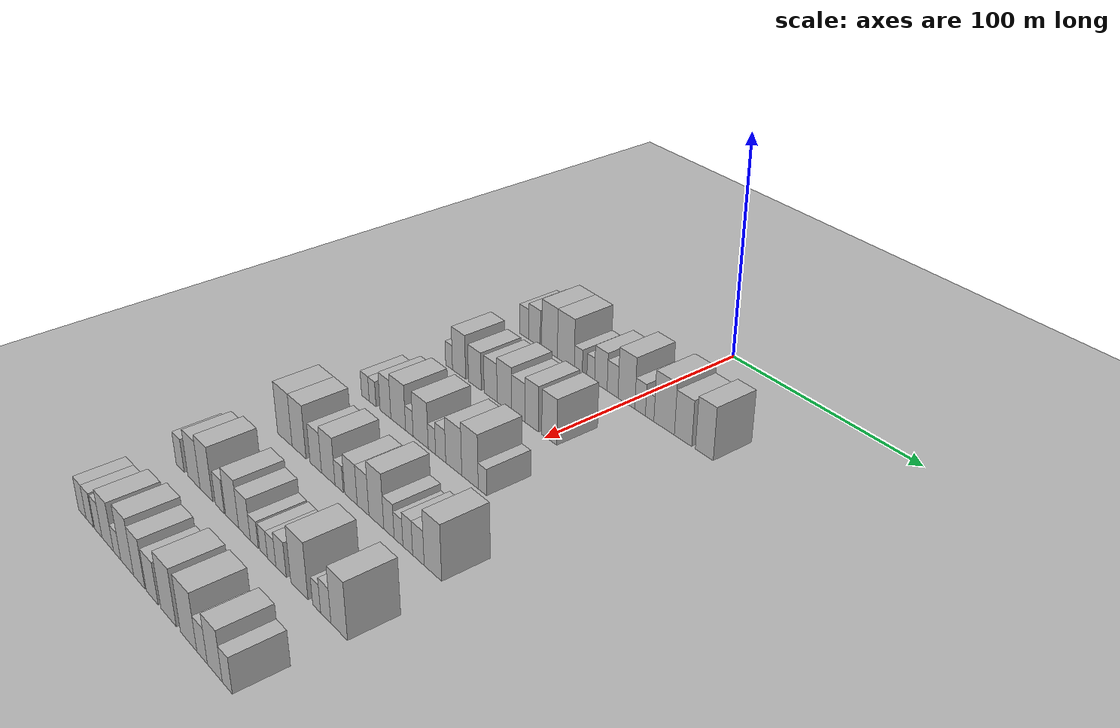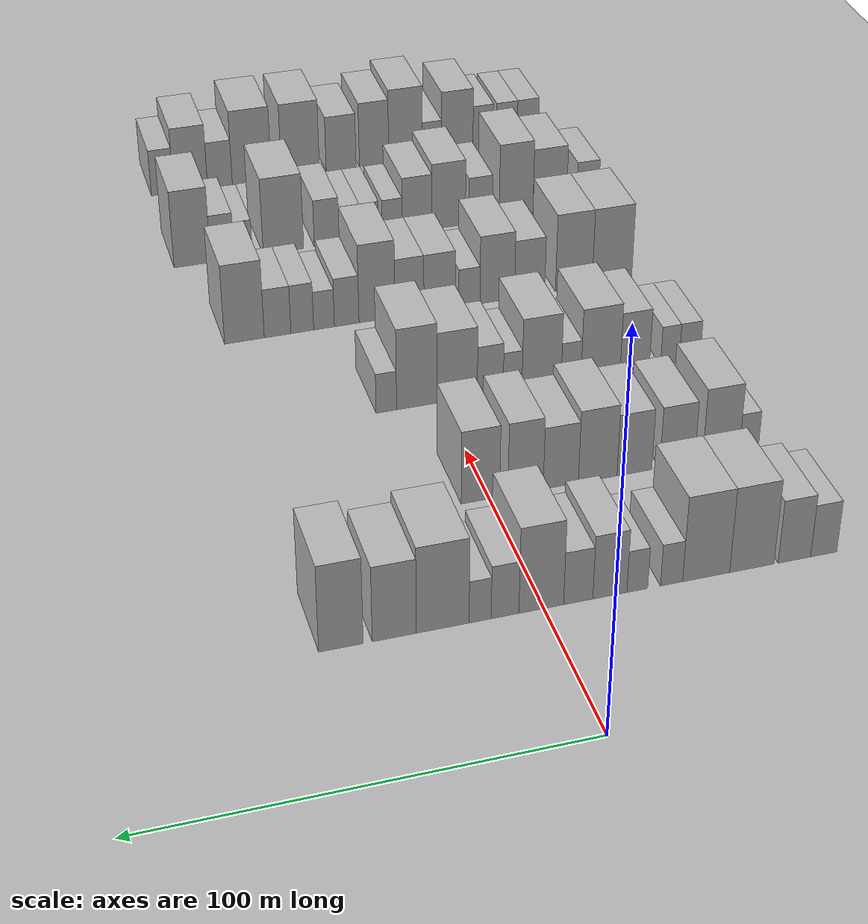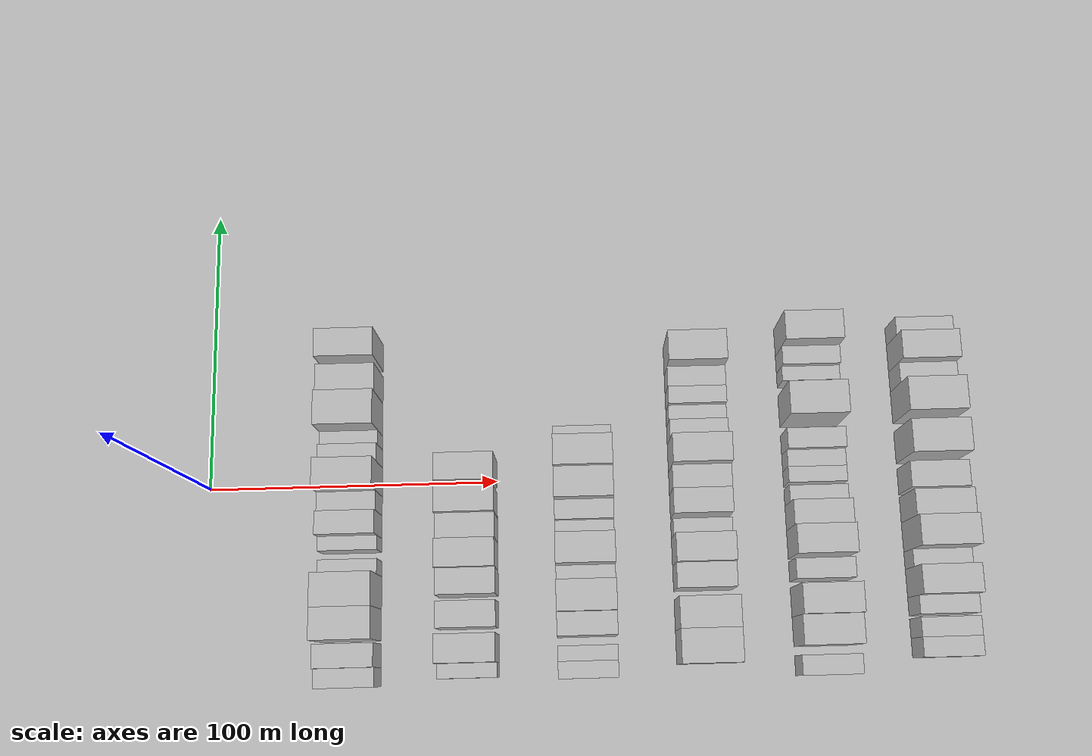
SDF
<sdf version="1.6">
 <world name="default">
  <include><name>ground_plane_1</name><uri>model://HANNAS_ground_plane</uri></include>
  <include>
   <name>ground_plane_2</name>
   <uri>model://HANNAS_ground_plane</uri>
   <pose>100 0 0  0 0 0</pose>
  </include>
  <model name="building_64">
   <static>1</static>
   <pose>50.0000 -65.6511 0 0.000000 0.000000 0.000000</pose>
   <link name="link">
    <pose>0 0 7.50 0 0 0</pose>
    <collision name="collision"><geometry><box><size>20.0000 6.3529 15.0000</size></box></geometry></collision>
    <visual name="visual">
     <cast_shadows>0</cast_shadows>
     <geometry><box><size>20.0000 6.3529 15.0000</size></box></geometry>
     <material>
      <script>
       <uri>model://HANNAS_wall/materials/scripts</uri>
       <uri>model://HANNAS_wall/materials/textures</uri>
       <name>vrc/HANNAS_wall</name>
      </script>
     </material>
    </visual>
   </link>
  </model>
  <model name="building_65">
   <static>1</static>
   <pose>50.0000 -58.5426 0 0.000000 0.000000 0.000000</pose>
   <link name="link">
    <pose>0 0 9.00 0 0 0</pose>
    <collision name="collision"><geometry><box><size>20.0000 7.8641 18.0000</size></box></geometry></collision>
    <visual name="visual">
     <cast_shadows>0</cast_shadows>
     <geometry><box><size>20.0000 7.8641 18.0000</size></box></geometry>
     <material>
      <script>
       <uri>model://HANNAS_wall/materials/scripts</uri>
       <uri>model://HANNAS_wall/materials/textures</uri>
       <name>vrc/HANNAS_wall</name>
      </script>
     </material>
    </visual>
   </link>
  </model>
  <model name="building_66">
   <static>1</static>
   <pose>50.0000 -48.3040 0 0.000000 0.000000 0.000000</pose>
   <link name="link">
    <pose>0 0 12.00 0 0 0</pose>
    <collision name="collision"><geometry><box><size>20.0000 10.6131 24.0000</size></box></geometry></collision>
    <visual name="visual">
     <cast_shadows>0</cast_shadows>
     <geometry><box><size>20.0000 10.6131 24.0000</size></box></geometry>
     <material>
      <script>
       <uri>model://HANNAS_wall/materials/scripts</uri>
       <uri>model://HANNAS_wall/materials/textures</uri>
       <name>vrc/HANNAS_wall</name>
      </script>
     </material>
    </visual>
   </link>
  </model>
  <model name="building_67">
   <static>1</static>
   <pose>50.0000 -37.4213 0 0.000000 0.000000 0.000000</pose>
   <link name="link">
    <pose>0 0 12.00 0 0 0</pose>
    <collision name="collision"><geometry><box><size>20.0000 11.1522 24.0000</size></box></geometry></collision>
    <visual name="visual">
     <cast_shadows>0</cast_shadows>
     <geometry><box><size>20.0000 11.1522 24.0000</size></box></geometry>
     <material>
      <script>
       <uri>model://HANNAS_wall/materials/scripts</uri>
       <uri>model://HANNAS_wall/materials/textures</uri>
       <name>vrc/HANNAS_wall</name>
      </script>
     </material>
    </visual>
   </link>
  </model>
  <model name="building_68">
   <static>1</static>
   <pose>50.0000 -29.2512 0 0.000000 0.000000 0.000000</pose>
   <link name="link">
    <pose>0 0 6.00 0 0 0</pose>
    <collision name="collision"><geometry><box><size>20.0000 5.1881 12.0000</size></box></geometry></collision>
    <visual name="visual">
     <cast_shadows>0</cast_shadows>
     <geometry><box><size>20.0000 5.1881 12.0000</size></box></geometry>
     <material>
      <script>
       <uri>model://HANNAS_wall/materials/scripts</uri>
       <uri>model://HANNAS_wall/materials/textures</uri>
       <name>vrc/HANNAS_wall</name>
      </script>
     </material>
    </visual>
   </link>
  </model>
  <model name="building_69">
   <static>1</static>
   <pose>50.0000 -21.2386 0 0.000000 0.000000 0.000000</pose>
   <link name="link">
    <pose>0 0 6.00 0 0 0</pose>
    <collision name="collision"><geometry><box><size>20.0000 4.8372 12.0000</size></box></geometry></collision>
    <visual name="visual">
     <cast_shadows>0</cast_shadows>
     <geometry><box><size>20.0000 4.8372 12.0000</size></box></geometry>
     <material>
      <script>
       <uri>model://HANNAS_wall/materials/scripts</uri>
       <uri>model://HANNAS_wall/materials/textures</uri>
       <name>vrc/HANNAS_wall</name>
      </script>
     </material>
    </visual>
   </link>
  </model>
  <model name="building_70">
   <static>1</static>
   <pose>50.0000 -14.8631 0 0.000000 0.000000 0.000000</pose>
   <link name="link">
    <pose>0 0 9.00 0 0 0</pose>
    <collision name="collision"><geometry><box><size>20.0000 7.9138 18.0000</size></box></geometry></collision>
    <visual name="visual">
     <cast_shadows>0</cast_shadows>
     <geometry><box><size>20.0000 7.9138 18.0000</size></box></geometry>
     <material>
      <script>
       <uri>model://HANNAS_wall/materials/scripts</uri>
       <uri>model://HANNAS_wall/materials/textures</uri>
       <name>vrc/HANNAS_wall</name>
      </script>
     </material>
    </visual>
   </link>
  </model>
  <model name="building_71">
   <static>1</static>
   <pose>50.0000 -7.5444 0 0.000000 0.000000 0.000000</pose>
   <link name="link">
    <pose>0 0 7.50 0 0 0</pose>
    <collision name="collision"><geometry><box><size>20.0000 6.7236 15.0000</size></box></geometry></collision>
    <visual name="visual">
     <cast_shadows>0</cast_shadows>
     <geometry><box><size>20.0000 6.7236 15.0000</size></box></geometry>
     <material>
      <script>
       <uri>model://HANNAS_wall/materials/scripts</uri>
       <uri>model://HANNAS_wall/materials/textures</uri>
       <name>vrc/HANNAS_wall</name>
      </script>
     </material>
    </visual>
   </link>
  </model>
  <model name="building_72">
   <static>1</static>
   <pose>50.0000 0.9206 0 0.000000 0.000000 0.000000</pose>
   <link name="link">
    <pose>0 0 12.00 0 0 0</pose>
    <collision name="collision"><geometry><box><size>20.0000 10.2063 24.0000</size></box></geometry></collision>
    <visual name="visual">
     <cast_shadows>0</cast_shadows>
     <geometry><box><size>20.0000 10.2063 24.0000</size></box></geometry>
     <material>
      <script>
       <uri>model://HANNAS_wall/materials/scripts</uri>
       <uri>model://HANNAS_wall/materials/textures</uri>
       <name>vrc/HANNAS_wall</name>
      </script>
     </material>
    </visual>
   </link>
  </model>
  <model name="building_73">
   <static>1</static>
   <pose>50.0000 9.1460 0 0.000000 0.000000 0.000000</pose>
   <link name="link">
    <pose>0 0 7.50 0 0 0</pose>
    <collision name="collision"><geometry><box><size>20.0000 6.2447 15.0000</size></box></geometry></collision>
    <visual name="visual">
     <cast_shadows>0</cast_shadows>
     <geometry><box><size>20.0000 6.2447 15.0000</size></box></geometry>
     <material>
      <script>
       <uri>model://HANNAS_wall/materials/scripts</uri>
       <uri>model://HANNAS_wall/materials/textures</uri>
       <name>vrc/HANNAS_wall</name>
      </script>
     </material>
    </visual>
   </link>
  </model>
  <model name="building_74">
   <static>1</static>
   <pose>50.0000 14.7598 0 0.000000 0.000000 0.000000</pose>
   <link name="link">
    <pose>0 0 6.00 0 0 0</pose>
    <collision name="collision"><geometry><box><size>20.0000 4.9830 12.0000</size></box></geometry></collision>
    <visual name="visual">
     <cast_shadows>0</cast_shadows>
     <geometry><box><size>20.0000 4.9830 12.0000</size></box></geometry>
     <material>
      <script>
       <uri>model://HANNAS_wall/materials/scripts</uri>
       <uri>model://HANNAS_wall/materials/textures</uri>
       <name>vrc/HANNAS_wall</name>
      </script>
     </material>
    </visual>
   </link>
  </model>
  <model name="building_75">
   <static>1</static>
   <pose>50.0000 23.1428 0 0.000000 0.000000 0.000000</pose>
   <link name="link">
    <pose>0 0 12.00 0 0 0</pose>
    <collision name="collision"><geometry><box><size>20.0000 11.7831 24.0000</size></box></geometry></collision>
    <visual name="visual">
     <cast_shadows>0</cast_shadows>
     <geometry><box><size>20.0000 11.7831 24.0000</size></box></geometry>
     <material>
      <script>
       <uri>model://HANNAS_wall/materials/scripts</uri>
       <uri>model://HANNAS_wall/materials/textures</uri>
       <name>vrc/HANNAS_wall</name>
      </script>
     </material>
    </visual>
   </link>
  </model>
  <model name="building_76">
   <static>1</static>
   <pose>50.0000 33.9012 0 0.000000 0.000000 0.000000</pose>
   <link name="link">
    <pose>0 0 10.50 0 0 0</pose>
    <collision name="collision"><geometry><box><size>20.0000 9.7337 21.0000</size></box></geometry></collision>
    <visual name="visual">
     <cast_shadows>0</cast_shadows>
     <geometry><box><size>20.0000 9.7337 21.0000</size></box></geometry>
     <material>
      <script>
       <uri>model://HANNAS_wall/materials/scripts</uri>
       <uri>model://HANNAS_wall/materials/textures</uri>
       <name>vrc/HANNAS_wall</name>
      </script>
     </material>
    </visual>
   </link>
  </model>
  <model name="building_77">
   <static>1</static>
   <pose>50.0000 45.6295 0 0.000000 0.000000 0.000000</pose>
   <link name="link">
    <pose>0 0 12.00 0 0 0</pose>
    <collision name="collision"><geometry><box><size>20.0000 9.7229 24.0000</size></box></geometry></collision>
    <visual name="visual">
     <cast_shadows>0</cast_shadows>
     <geometry><box><size>20.0000 9.7229 24.0000</size></box></geometry>
     <material>
      <script>
       <uri>model://HANNAS_wall/materials/scripts</uri>
       <uri>model://HANNAS_wall/materials/textures</uri>
       <name>vrc/HANNAS_wall</name>
      </script>
     </material>
    </visual>
   </link>
  </model>
  <model name="building_197">
   <static>1</static>
   <pose>90.0000 -64.3534 0 0.000000 0.000000 0.000000</pose>
   <link name="link">
    <pose>0 0 6.00 0 0 0</pose>
    <collision name="collision"><geometry><box><size>20.0000 4.8891 12.0000</size></box></geometry></collision>
    <visual name="visual">
     <cast_shadows>0</cast_shadows>
     <geometry><box><size>20.0000 4.8891 12.0000</size></box></geometry>
     <material>
      <script>
       <uri>model://HANNAS_wall/materials/scripts</uri>
       <uri>model://HANNAS_wall/materials/textures</uri>
       <name>vrc/HANNAS_wall</name>
      </script>
     </material>
    </visual>
   </link>
  </model>
  <model name="building_198">
   <static>1</static>
   <pose>90.0000 -57.2285 0 0.000000 0.000000 0.000000</pose>
   <link name="link">
    <pose>0 0 10.50 0 0 0</pose>
    <collision name="collision"><geometry><box><size>20.0000 9.3607 21.0000</size></box></geometry></collision>
    <visual name="visual">
     <cast_shadows>0</cast_shadows>
     <geometry><box><size>20.0000 9.3607 21.0000</size></box></geometry>
     <material>
      <script>
       <uri>model://HANNAS_wall/materials/scripts</uri>
       <uri>model://HANNAS_wall/materials/textures</uri>
       <name>vrc/HANNAS_wall</name>
      </script>
     </material>
    </visual>
   </link>
  </model>
  <model name="building_199">
   <static>1</static>
   <pose>90.0000 -46.1485 0 0.000000 0.000000 0.000000</pose>
   <link name="link">
    <pose>0 0 9.00 0 0 0</pose>
    <collision name="collision"><geometry><box><size>20.0000 8.7994 18.0000</size></box></geometry></collision>
    <visual name="visual">
     <cast_shadows>0</cast_shadows>
     <geometry><box><size>20.0000 8.7994 18.0000</size></box></geometry>
     <material>
      <script>
       <uri>model://HANNAS_wall/materials/scripts</uri>
       <uri>model://HANNAS_wall/materials/textures</uri>
       <name>vrc/HANNAS_wall</name>
      </script>
     </material>
    </visual>
   </link>
  </model>
  <model name="building_200">
   <static>1</static>
   <pose>90.0000 -35.3935 0 0.000000 0.000000 0.000000</pose>
   <link name="link">
    <pose>0 0 9.00 0 0 0</pose>
    <collision name="collision"><geometry><box><size>20.0000 8.7107 18.0000</size></box></geometry></collision>
    <visual name="visual">
     <cast_shadows>0</cast_shadows>
     <geometry><box><size>20.0000 8.7107 18.0000</size></box></geometry>
     <material>
      <script>
       <uri>model://HANNAS_wall/materials/scripts</uri>
       <uri>model://HANNAS_wall/materials/textures</uri>
       <name>vrc/HANNAS_wall</name>
      </script>
     </material>
    </visual>
   </link>
  </model>
  <model name="building_201">
   <static>1</static>
   <pose>90.0000 -26.2478 0 0.000000 0.000000 0.000000</pose>
   <link name="link">
    <pose>0 0 10.50 0 0 0</pose>
    <collision name="collision"><geometry><box><size>20.0000 9.5806 21.0000</size></box></geometry></collision>
    <visual name="visual">
     <cast_shadows>0</cast_shadows>
     <geometry><box><size>20.0000 9.5806 21.0000</size></box></geometry>
     <material>
      <script>
       <uri>model://HANNAS_wall/materials/scripts</uri>
       <uri>model://HANNAS_wall/materials/textures</uri>
       <name>vrc/HANNAS_wall</name>
      </script>
     </material>
    </visual>
   </link>
  </model>
  <model name="building_202">
   <static>1</static>
   <pose>90.0000 -17.1225 0 0.000000 0.000000 0.000000</pose>
   <link name="link">
    <pose>0 0 9.00 0 0 0</pose>
    <collision name="collision"><geometry><box><size>20.0000 8.6701 18.0000</size></box></geometry></collision>
    <visual name="visual">
     <cast_shadows>0</cast_shadows>
     <geometry><box><size>20.0000 8.6701 18.0000</size></box></geometry>
     <material>
      <script>
       <uri>model://HANNAS_wall/materials/scripts</uri>
       <uri>model://HANNAS_wall/materials/textures</uri>
       <name>vrc/HANNAS_wall</name>
      </script>
     </material>
    </visual>
   </link>
  </model>
  <model name="building_203">
   <static>1</static>
   <pose>90.0000 -8.4777 0 0.000000 0.000000 0.000000</pose>
   <link name="link">
    <pose>0 0 10.50 0 0 0</pose>
    <collision name="collision"><geometry><box><size>20.0000 8.6196 21.0000</size></box></geometry></collision>
    <visual name="visual">
     <cast_shadows>0</cast_shadows>
     <geometry><box><size>20.0000 8.6196 21.0000</size></box></geometry>
     <material>
      <script>
       <uri>model://HANNAS_wall/materials/scripts</uri>
       <uri>model://HANNAS_wall/materials/textures</uri>
       <name>vrc/HANNAS_wall</name>
      </script>
     </material>
    </visual>
   </link>
  </model>
  <model name="building_204">
   <static>1</static>
   <pose>90.0000 2.4869 0 0.000000 0.000000 0.000000</pose>
   <link name="link">
    <pose>0 0 10.50 0 0 0</pose>
    <collision name="collision"><geometry><box><size>20.0000 9.3095 21.0000</size></box></geometry></collision>
    <visual name="visual">
     <cast_shadows>0</cast_shadows>
     <geometry><box><size>20.0000 9.3095 21.0000</size></box></geometry>
     <material>
      <script>
       <uri>model://HANNAS_wall/materials/scripts</uri>
       <uri>model://HANNAS_wall/materials/textures</uri>
       <name>vrc/HANNAS_wall</name>
      </script>
     </material>
    </visual>
   </link>
  </model>
  <model name="building_326">
   <static>1</static>
   <pose>130.0000 -65.0928 0 0.000000 0.000000 0.000000</pose>
   <link name="link">
    <pose>0 0 6.00 0 0 0</pose>
    <collision name="collision"><geometry><box><size>20.0000 5.6555 12.0000</size></box></geometry></collision>
    <visual name="visual">
     <cast_shadows>0</cast_shadows>
     <geometry><box><size>20.0000 5.6555 12.0000</size></box></geometry>
     <material>
      <script>
       <uri>model://HANNAS_wall/materials/scripts</uri>
       <uri>model://HANNAS_wall/materials/textures</uri>
       <name>vrc/HANNAS_wall</name>
      </script>
     </material>
    </visual>
   </link>
  </model>
  <model name="building_327">
   <static>1</static>
   <pose>130.0000 -59.7516 0 0.000000 0.000000 0.000000</pose>
   <link name="link">
    <pose>0 0 6.00 0 0 0</pose>
    <collision name="collision"><geometry><box><size>20.0000 5.0269 12.0000</size></box></geometry></collision>
    <visual name="visual">
     <cast_shadows>0</cast_shadows>
     <geometry><box><size>20.0000 5.0269 12.0000</size></box></geometry>
     <material>
      <script>
       <uri>model://HANNAS_wall/materials/scripts</uri>
       <uri>model://HANNAS_wall/materials/textures</uri>
       <name>vrc/HANNAS_wall</name>
      </script>
     </material>
    </visual>
   </link>
  </model>
  <model name="building_328">
   <static>1</static>
   <pose>130.0000 -50.3245 0 0.000000 0.000000 0.000000</pose>
   <link name="link">
    <pose>0 0 9.00 0 0 0</pose>
    <collision name="collision"><geometry><box><size>20.0000 7.8274 18.0000</size></box></geometry></collision>
    <visual name="visual">
     <cast_shadows>0</cast_shadows>
     <geometry><box><size>20.0000 7.8274 18.0000</size></box></geometry>
     <material>
      <script>
       <uri>model://HANNAS_wall/materials/scripts</uri>
       <uri>model://HANNAS_wall/materials/textures</uri>
       <name>vrc/HANNAS_wall</name>
      </script>
     </material>
    </visual>
   </link>
  </model>
  <model name="building_329">
   <static>1</static>
   <pose>130.0000 -41.2057 0 0.000000 0.000000 0.000000</pose>
   <link name="link">
    <pose>0 0 10.50 0 0 0</pose>
    <collision name="collision"><geometry><box><size>20.0000 10.4100 21.0000</size></box></geometry></collision>
    <visual name="visual">
     <cast_shadows>0</cast_shadows>
     <geometry><box><size>20.0000 10.4100 21.0000</size></box></geometry>
     <material>
      <script>
       <uri>model://HANNAS_wall/materials/scripts</uri>
       <uri>model://HANNAS_wall/materials/textures</uri>
       <name>vrc/HANNAS_wall</name>
      </script>
     </material>
    </visual>
   </link>
  </model>
  <model name="building_330">
   <static>1</static>
   <pose>130.0000 -33.3803 0 0.000000 0.000000 0.000000</pose>
   <link name="link">
    <pose>0 0 6.00 0 0 0</pose>
    <collision name="collision"><geometry><box><size>20.0000 5.2408 12.0000</size></box></geometry></collision>
    <visual name="visual">
     <cast_shadows>0</cast_shadows>
     <geometry><box><size>20.0000 5.2408 12.0000</size></box></geometry>
     <material>
      <script>
       <uri>model://HANNAS_wall/materials/scripts</uri>
       <uri>model://HANNAS_wall/materials/textures</uri>
       <name>vrc/HANNAS_wall</name>
      </script>
     </material>
    </visual>
   </link>
  </model>
  <model name="building_331">
   <static>1</static>
   <pose>130.0000 -25.6265 0 0.000000 0.000000 0.000000</pose>
   <link name="link">
    <pose>0 0 10.50 0 0 0</pose>
    <collision name="collision"><geometry><box><size>20.0000 10.2670 21.0000</size></box></geometry></collision>
    <visual name="visual">
     <cast_shadows>0</cast_shadows>
     <geometry><box><size>20.0000 10.2670 21.0000</size></box></geometry>
     <material>
      <script>
       <uri>model://HANNAS_wall/materials/scripts</uri>
       <uri>model://HANNAS_wall/materials/textures</uri>
       <name>vrc/HANNAS_wall</name>
      </script>
     </material>
    </visual>
   </link>
  </model>
  <model name="building_332">
   <static>1</static>
   <pose>130.0000 -18.0540 0 0.000000 0.000000 0.000000</pose>
   <link name="link">
    <pose>0 0 6.00 0 0 0</pose>
    <collision name="collision"><geometry><box><size>20.0000 4.8780 12.0000</size></box></geometry></collision>
    <visual name="visual">
     <cast_shadows>0</cast_shadows>
     <geometry><box><size>20.0000 4.8780 12.0000</size></box></geometry>
     <material>
      <script>
       <uri>model://HANNAS_wall/materials/scripts</uri>
       <uri>model://HANNAS_wall/materials/textures</uri>
       <name>vrc/HANNAS_wall</name>
      </script>
     </material>
    </visual>
   </link>
  </model>
  <model name="building_333">
   <static>1</static>
   <pose>130.0000 -12.2588 0 0.000000 0.000000 0.000000</pose>
   <link name="link">
    <pose>0 0 7.50 0 0 0</pose>
    <collision name="collision"><geometry><box><size>20.0000 6.7123 15.0000</size></box></geometry></collision>
    <visual name="visual">
     <cast_shadows>0</cast_shadows>
     <geometry><box><size>20.0000 6.7123 15.0000</size></box></geometry>
     <material>
      <script>
       <uri>model://HANNAS_wall/materials/scripts</uri>
       <uri>model://HANNAS_wall/materials/textures</uri>
       <name>vrc/HANNAS_wall</name>
      </script>
     </material>
    </visual>
   </link>
  </model>
  <model name="building_334">
   <static>1</static>
   <pose>130.0000 -3.7329 0 0.000000 0.000000 0.000000</pose>
   <link name="link">
    <pose>0 0 10.50 0 0 0</pose>
    <collision name="collision"><geometry><box><size>20.0000 10.3394 21.0000</size></box></geometry></collision>
    <visual name="visual">
     <cast_shadows>0</cast_shadows>
     <geometry><box><size>20.0000 10.3394 21.0000</size></box></geometry>
     <material>
      <script>
       <uri>model://HANNAS_wall/materials/scripts</uri>
       <uri>model://HANNAS_wall/materials/textures</uri>
       <name>vrc/HANNAS_wall</name>
      </script>
     </material>
    </visual>
   </link>
  </model>
  <model name="building_335">
   <static>1</static>
   <pose>130.0000 6.5908 0 0.000000 0.000000 0.000000</pose>
   <link name="link">
    <pose>0 0 12.00 0 0 0</pose>
    <collision name="collision"><geometry><box><size>20.0000 10.3081 24.0000</size></box></geometry></collision>
    <visual name="visual">
     <cast_shadows>0</cast_shadows>
     <geometry><box><size>20.0000 10.3081 24.0000</size></box></geometry>
     <material>
      <script>
       <uri>model://HANNAS_wall/materials/scripts</uri>
       <uri>model://HANNAS_wall/materials/textures</uri>
       <name>vrc/HANNAS_wall</name>
      </script>
     </material>
    </visual>
   </link>
  </model>
  <model name="building_336">
   <static>1</static>
   <pose>130.0000 14.3501 0 0.000000 0.000000 0.000000</pose>
   <link name="link">
    <pose>0 0 6.00 0 0 0</pose>
    <collision name="collision"><geometry><box><size>20.0000 5.2105 12.0000</size></box></geometry></collision>
    <visual name="visual">
     <cast_shadows>0</cast_shadows>
     <geometry><box><size>20.0000 5.2105 12.0000</size></box></geometry>
     <material>
      <script>
       <uri>model://HANNAS_wall/materials/scripts</uri>
       <uri>model://HANNAS_wall/materials/textures</uri>
       <name>vrc/HANNAS_wall</name>
      </script>
     </material>
    </visual>
   </link>
  </model>
  <model name="building_458">
   <static>1</static>
   <pose>170.0000 -58.6508 0 0.000000 0.000000 0.000000</pose>
   <link name="link">
    <pose>0 0 12.00 0 0 0</pose>
    <collision name="collision"><geometry><box><size>20.0000 11.1778 24.0000</size></box></geometry></collision>
    <visual name="visual">
     <cast_shadows>0</cast_shadows>
     <geometry><box><size>20.0000 11.1778 24.0000</size></box></geometry>
     <material>
      <script>
       <uri>model://HANNAS_wall/materials/scripts</uri>
       <uri>model://HANNAS_wall/materials/textures</uri>
       <name>vrc/HANNAS_wall</name>
      </script>
     </material>
    </visual>
   </link>
  </model>
  <model name="building_459">
   <static>1</static>
   <pose>170.0000 -47.9018 0 0.000000 0.000000 0.000000</pose>
   <link name="link">
    <pose>0 0 12.00 0 0 0</pose>
    <collision name="collision"><geometry><box><size>20.0000 10.3203 24.0000</size></box></geometry></collision>
    <visual name="visual">
     <cast_shadows>0</cast_shadows>
     <geometry><box><size>20.0000 10.3203 24.0000</size></box></geometry>
     <material>
      <script>
       <uri>model://HANNAS_wall/materials/scripts</uri>
       <uri>model://HANNAS_wall/materials/textures</uri>
       <name>vrc/HANNAS_wall</name>
      </script>
     </material>
    </visual>
   </link>
  </model>
  <model name="building_460">
   <static>1</static>
   <pose>170.0000 -35.5423 0 0.000000 0.000000 0.000000</pose>
   <link name="link">
    <pose>0 0 9.00 0 0 0</pose>
    <collision name="collision"><geometry><box><size>20.0000 8.3987 18.0000</size></box></geometry></collision>
    <visual name="visual">
     <cast_shadows>0</cast_shadows>
     <geometry><box><size>20.0000 8.3987 18.0000</size></box></geometry>
     <material>
      <script>
       <uri>model://HANNAS_wall/materials/scripts</uri>
       <uri>model://HANNAS_wall/materials/textures</uri>
       <name>vrc/HANNAS_wall</name>
      </script>
     </material>
    </visual>
   </link>
  </model>
  <model name="building_461">
   <static>1</static>
   <pose>170.0000 -26.5677 0 0.000000 0.000000 0.000000</pose>
   <link name="link">
    <pose>0 0 10.50 0 0 0</pose>
    <collision name="collision"><geometry><box><size>20.0000 9.5504 21.0000</size></box></geometry></collision>
    <visual name="visual">
     <cast_shadows>0</cast_shadows>
     <geometry><box><size>20.0000 9.5504 21.0000</size></box></geometry>
     <material>
      <script>
       <uri>model://HANNAS_wall/materials/scripts</uri>
       <uri>model://HANNAS_wall/materials/textures</uri>
       <name>vrc/HANNAS_wall</name>
      </script>
     </material>
    </visual>
   </link>
  </model>
  <model name="building_462">
   <static>1</static>
   <pose>170.0000 -18.8916 0 0.000000 0.000000 0.000000</pose>
   <link name="link">
    <pose>0 0 6.00 0 0 0</pose>
    <collision name="collision"><geometry><box><size>20.0000 5.8019 12.0000</size></box></geometry></collision>
    <visual name="visual">
     <cast_shadows>0</cast_shadows>
     <geometry><box><size>20.0000 5.8019 12.0000</size></box></geometry>
     <material>
      <script>
       <uri>model://HANNAS_wall/materials/scripts</uri>
       <uri>model://HANNAS_wall/materials/textures</uri>
       <name>vrc/HANNAS_wall</name>
      </script>
     </material>
    </visual>
   </link>
  </model>
  <model name="building_463">
   <static>1</static>
   <pose>170.0000 -10.7473 0 0.000000 0.000000 0.000000</pose>
   <link name="link">
    <pose>0 0 9.00 0 0 0</pose>
    <collision name="collision"><geometry><box><size>20.0000 8.4867 18.0000</size></box></geometry></collision>
    <visual name="visual">
     <cast_shadows>0</cast_shadows>
     <geometry><box><size>20.0000 8.4867 18.0000</size></box></geometry>
     <material>
      <script>
       <uri>model://HANNAS_wall/materials/scripts</uri>
       <uri>model://HANNAS_wall/materials/textures</uri>
       <name>vrc/HANNAS_wall</name>
      </script>
     </material>
    </visual>
   </link>
  </model>
  <model name="building_464">
   <static>1</static>
   <pose>170.0000 -2.5816 0 0.000000 0.000000 0.000000</pose>
   <link name="link">
    <pose>0 0 9.00 0 0 0</pose>
    <collision name="collision"><geometry><box><size>20.0000 7.8446 18.0000</size></box></geometry></collision>
    <visual name="visual">
     <cast_shadows>0</cast_shadows>
     <geometry><box><size>20.0000 7.8446 18.0000</size></box></geometry>
     <material>
      <script>
       <uri>model://HANNAS_wall/materials/scripts</uri>
       <uri>model://HANNAS_wall/materials/textures</uri>
       <name>vrc/HANNAS_wall</name>
      </script>
     </material>
    </visual>
   </link>
  </model>
  <model name="building_465">
   <static>1</static>
   <pose>170.0000 6.1955 0 0.000000 0.000000 0.000000</pose>
   <link name="link">
    <pose>0 0 12.00 0 0 0</pose>
    <collision name="collision"><geometry><box><size>20.0000 9.7097 24.0000</size></box></geometry></collision>
    <visual name="visual">
     <cast_shadows>0</cast_shadows>
     <geometry><box><size>20.0000 9.7097 24.0000</size></box></geometry>
     <material>
      <script>
       <uri>model://HANNAS_wall/materials/scripts</uri>
       <uri>model://HANNAS_wall/materials/textures</uri>
       <name>vrc/HANNAS_wall</name>
      </script>
     </material>
    </visual>
   </link>
  </model>
  <model name="building_466">
   <static>1</static>
   <pose>170.0000 14.3420 0 0.000000 0.000000 0.000000</pose>
   <link name="link">
    <pose>0 0 7.50 0 0 0</pose>
    <collision name="collision"><geometry><box><size>20.0000 6.5833 15.0000</size></box></geometry></collision>
    <visual name="visual">
     <cast_shadows>0</cast_shadows>
     <geometry><box><size>20.0000 6.5833 15.0000</size></box></geometry>
     <material>
      <script>
       <uri>model://HANNAS_wall/materials/scripts</uri>
       <uri>model://HANNAS_wall/materials/textures</uri>
       <name>vrc/HANNAS_wall</name>
      </script>
     </material>
    </visual>
   </link>
  </model>
  <model name="building_467">
   <static>1</static>
   <pose>170.0000 20.3902 0 0.000000 0.000000 0.000000</pose>
   <link name="link">
    <pose>0 0 6.00 0 0 0</pose>
    <collision name="collision"><geometry><box><size>20.0000 5.5132 12.0000</size></box></geometry></collision>
    <visual name="visual">
     <cast_shadows>0</cast_shadows>
     <geometry><box><size>20.0000 5.5132 12.0000</size></box></geometry>
     <material>
      <script>
       <uri>model://HANNAS_wall/materials/scripts</uri>
       <uri>model://HANNAS_wall/materials/textures</uri>
       <name>vrc/HANNAS_wall</name>
      </script>
     </material>
    </visual>
   </link>
  </model>
  <model name="building_468">
   <static>1</static>
   <pose>170.0000 26.1577 0 0.000000 0.000000 0.000000</pose>
   <link name="link">
    <pose>0 0 7.50 0 0 0</pose>
    <collision name="collision"><geometry><box><size>20.0000 6.0218 15.0000</size></box></geometry></collision>
    <visual name="visual">
     <cast_shadows>0</cast_shadows>
     <geometry><box><size>20.0000 6.0218 15.0000</size></box></geometry>
     <material>
      <script>
       <uri>model://HANNAS_wall/materials/scripts</uri>
       <uri>model://HANNAS_wall/materials/textures</uri>
       <name>vrc/HANNAS_wall</name>
      </script>
     </material>
    </visual>
   </link>
  </model>
  <model name="building_469">
   <static>1</static>
   <pose>170.0000 32.6737 0 0.000000 0.000000 0.000000</pose>
   <link name="link">
    <pose>0 0 7.50 0 0 0</pose>
    <collision name="collision"><geometry><box><size>20.0000 7.0102 15.0000</size></box></geometry></collision>
    <visual name="visual">
     <cast_shadows>0</cast_shadows>
     <geometry><box><size>20.0000 7.0102 15.0000</size></box></geometry>
     <material>
      <script>
       <uri>model://HANNAS_wall/materials/scripts</uri>
       <uri>model://HANNAS_wall/materials/textures</uri>
       <name>vrc/HANNAS_wall</name>
      </script>
     </material>
    </visual>
   </link>
  </model>
  <model name="building_470">
   <static>1</static>
   <pose>170.0000 41.3707 0 0.000000 0.000000 0.000000</pose>
   <link name="link">
    <pose>0 0 12.00 0 0 0</pose>
    <collision name="collision"><geometry><box><size>20.0000 10.3839 24.0000</size></box></geometry></collision>
    <visual name="visual">
     <cast_shadows>0</cast_shadows>
     <geometry><box><size>20.0000 10.3839 24.0000</size></box></geometry>
     <material>
      <script>
       <uri>model://HANNAS_wall/materials/scripts</uri>
       <uri>model://HANNAS_wall/materials/textures</uri>
       <name>vrc/HANNAS_wall</name>
      </script>
     </material>
    </visual>
   </link>
  </model>
  <model name="building_603">
   <static>1</static>
   <pose>210.0000 -65.7439 0 0.000000 0.000000 0.000000</pose>
   <link name="link">
    <pose>0 0 7.50 0 0 0</pose>
    <collision name="collision"><geometry><box><size>20.0000 6.5616 15.0000</size></box></geometry></collision>
    <visual name="visual">
     <cast_shadows>0</cast_shadows>
     <geometry><box><size>20.0000 6.5616 15.0000</size></box></geometry>
     <material>
      <script>
       <uri>model://HANNAS_wall/materials/scripts</uri>
       <uri>model://HANNAS_wall/materials/textures</uri>
       <name>vrc/HANNAS_wall</name>
      </script>
     </material>
    </visual>
   </link>
  </model>
  <model name="building_604">
   <static>1</static>
   <pose>210.0000 -54.5024 0 0.000000 0.000000 0.000000</pose>
   <link name="link">
    <pose>0 0 10.50 0 0 0</pose>
    <collision name="collision"><geometry><box><size>20.0000 9.9213 21.0000</size></box></geometry></collision>
    <visual name="visual">
     <cast_shadows>0</cast_shadows>
     <geometry><box><size>20.0000 9.9213 21.0000</size></box></geometry>
     <material>
      <script>
       <uri>model://HANNAS_wall/materials/scripts</uri>
       <uri>model://HANNAS_wall/materials/textures</uri>
       <name>vrc/HANNAS_wall</name>
      </script>
     </material>
    </visual>
   </link>
  </model>
  <model name="building_605">
   <static>1</static>
   <pose>210.0000 -44.5814 0 0.000000 0.000000 0.000000</pose>
   <link name="link">
    <pose>0 0 12.00 0 0 0</pose>
    <collision name="collision"><geometry><box><size>20.0000 9.9207 24.0000</size></box></geometry></collision>
    <visual name="visual">
     <cast_shadows>0</cast_shadows>
     <geometry><box><size>20.0000 9.9207 24.0000</size></box></geometry>
     <material>
      <script>
       <uri>model://HANNAS_wall/materials/scripts</uri>
       <uri>model://HANNAS_wall/materials/textures</uri>
       <name>vrc/HANNAS_wall</name>
      </script>
     </material>
    </visual>
   </link>
  </model>
  <model name="building_606">
   <static>1</static>
   <pose>210.0000 -34.2015 0 0.000000 0.000000 0.000000</pose>
   <link name="link">
    <pose>0 0 7.50 0 0 0</pose>
    <collision name="collision"><geometry><box><size>20.0000 6.8392 15.0000</size></box></geometry></collision>
    <visual name="visual">
     <cast_shadows>0</cast_shadows>
     <geometry><box><size>20.0000 6.8392 15.0000</size></box></geometry>
     <material>
      <script>
       <uri>model://HANNAS_wall/materials/scripts</uri>
       <uri>model://HANNAS_wall/materials/textures</uri>
       <name>vrc/HANNAS_wall</name>
      </script>
     </material>
    </visual>
   </link>
  </model>
  <model name="building_607">
   <static>1</static>
   <pose>210.0000 -24.8997 0 0.000000 0.000000 0.000000</pose>
   <link name="link">
    <pose>0 0 10.50 0 0 0</pose>
    <collision name="collision"><geometry><box><size>20.0000 9.7645 21.0000</size></box></geometry></collision>
    <visual name="visual">
     <cast_shadows>0</cast_shadows>
     <geometry><box><size>20.0000 9.7645 21.0000</size></box></geometry>
     <material>
      <script>
       <uri>model://HANNAS_wall/materials/scripts</uri>
       <uri>model://HANNAS_wall/materials/textures</uri>
       <name>vrc/HANNAS_wall</name>
      </script>
     </material>
    </visual>
   </link>
  </model>
  <model name="building_608">
   <static>1</static>
   <pose>210.0000 -15.7573 0 0.000000 0.000000 0.000000</pose>
   <link name="link">
    <pose>0 0 9.00 0 0 0</pose>
    <collision name="collision"><geometry><box><size>20.0000 8.5203 18.0000</size></box></geometry></collision>
    <visual name="visual">
     <cast_shadows>0</cast_shadows>
     <geometry><box><size>20.0000 8.5203 18.0000</size></box></geometry>
     <material>
      <script>
       <uri>model://HANNAS_wall/materials/scripts</uri>
       <uri>model://HANNAS_wall/materials/textures</uri>
       <name>vrc/HANNAS_wall</name>
      </script>
     </material>
    </visual>
   </link>
  </model>
  <model name="building_609">
   <static>1</static>
   <pose>210.0000 -8.6410 0 0.000000 0.000000 0.000000</pose>
   <link name="link">
    <pose>0 0 6.00 0 0 0</pose>
    <collision name="collision"><geometry><box><size>20.0000 5.7122 12.0000</size></box></geometry></collision>
    <visual name="visual">
     <cast_shadows>0</cast_shadows>
     <geometry><box><size>20.0000 5.7122 12.0000</size></box></geometry>
     <material>
      <script>
       <uri>model://HANNAS_wall/materials/scripts</uri>
       <uri>model://HANNAS_wall/materials/textures</uri>
       <name>vrc/HANNAS_wall</name>
      </script>
     </material>
    </visual>
   </link>
  </model>
  <model name="building_610">
   <static>1</static>
   <pose>210.0000 -2.0868 0 0.000000 0.000000 0.000000</pose>
   <link name="link">
    <pose>0 0 6.00 0 0 0</pose>
    <collision name="collision"><geometry><box><size>20.0000 5.3962 12.0000</size></box></geometry></collision>
    <visual name="visual">
     <cast_shadows>0</cast_shadows>
     <geometry><box><size>20.0000 5.3962 12.0000</size></box></geometry>
     <material>
      <script>
       <uri>model://HANNAS_wall/materials/scripts</uri>
       <uri>model://HANNAS_wall/materials/textures</uri>
       <name>vrc/HANNAS_wall</name>
      </script>
     </material>
    </visual>
   </link>
  </model>
  <model name="building_611">
   <static>1</static>
   <pose>210.0000 3.5270 0 0.000000 0.000000 0.000000</pose>
   <link name="link">
    <pose>0 0 6.00 0 0 0</pose>
    <collision name="collision"><geometry><box><size>20.0000 5.8315 12.0000</size></box></geometry></collision>
    <visual name="visual">
     <cast_shadows>0</cast_shadows>
     <geometry><box><size>20.0000 5.8315 12.0000</size></box></geometry>
     <material>
      <script>
       <uri>model://HANNAS_wall/materials/scripts</uri>
       <uri>model://HANNAS_wall/materials/textures</uri>
       <name>vrc/HANNAS_wall</name>
      </script>
     </material>
    </visual>
   </link>
  </model>
  <model name="building_612">
   <static>1</static>
   <pose>210.0000 9.9667 0 0.000000 0.000000 0.000000</pose>
   <link name="link">
    <pose>0 0 7.50 0 0 0</pose>
    <collision name="collision"><geometry><box><size>20.0000 7.0478 15.0000</size></box></geometry></collision>
    <visual name="visual">
     <cast_shadows>0</cast_shadows>
     <geometry><box><size>20.0000 7.0478 15.0000</size></box></geometry>
     <material>
      <script>
       <uri>model://HANNAS_wall/materials/scripts</uri>
       <uri>model://HANNAS_wall/materials/textures</uri>
       <name>vrc/HANNAS_wall</name>
      </script>
     </material>
    </visual>
   </link>
  </model>
  <model name="building_613">
   <static>1</static>
   <pose>210.0000 22.1406 0 0.000000 0.000000 0.000000</pose>
   <link name="link">
    <pose>0 0 12.00 0 0 0</pose>
    <collision name="collision"><geometry><box><size>20.0000 11.3001 24.0000</size></box></geometry></collision>
    <visual name="visual">
     <cast_shadows>0</cast_shadows>
     <geometry><box><size>20.0000 11.3001 24.0000</size></box></geometry>
     <material>
      <script>
       <uri>model://HANNAS_wall/materials/scripts</uri>
       <uri>model://HANNAS_wall/materials/textures</uri>
       <name>vrc/HANNAS_wall</name>
      </script>
     </material>
    </visual>
   </link>
  </model>
  <model name="building_614">
   <static>1</static>
   <pose>210.0000 33.3205 0 0.000000 0.000000 0.000000</pose>
   <link name="link">
    <pose>0 0 6.00 0 0 0</pose>
    <collision name="collision"><geometry><box><size>20.0000 5.0596 12.0000</size></box></geometry></collision>
    <visual name="visual">
     <cast_shadows>0</cast_shadows>
     <geometry><box><size>20.0000 5.0596 12.0000</size></box></geometry>
     <material>
      <script>
       <uri>model://HANNAS_wall/materials/scripts</uri>
       <uri>model://HANNAS_wall/materials/textures</uri>
       <name>vrc/HANNAS_wall</name>
      </script>
     </material>
    </visual>
   </link>
  </model>
  <model name="building_615">
   <static>1</static>
   <pose>210.0000 39.0975 0 0.000000 0.000000 0.000000</pose>
   <link name="link">
    <pose>0 0 7.50 0 0 0</pose>
    <collision name="collision"><geometry><box><size>20.0000 6.4946 15.0000</size></box></geometry></collision>
    <visual name="visual">
     <cast_shadows>0</cast_shadows>
     <geometry><box><size>20.0000 6.4946 15.0000</size></box></geometry>
     <material>
      <script>
       <uri>model://HANNAS_wall/materials/scripts</uri>
       <uri>model://HANNAS_wall/materials/textures</uri>
       <name>vrc/HANNAS_wall</name>
      </script>
     </material>
    </visual>
   </link>
  </model>
  <model name="building_616">
   <static>1</static>
   <pose>210.0000 47.3576 0 0.000000 0.000000 0.000000</pose>
   <link name="link">
    <pose>0 0 12.00 0 0 0</pose>
    <collision name="collision"><geometry><box><size>20.0000 10.0255 24.0000</size></box></geometry></collision>
    <visual name="visual">
     <cast_shadows>0</cast_shadows>
     <geometry><box><size>20.0000 10.0255 24.0000</size></box></geometry>
     <material>
      <script>
       <uri>model://HANNAS_wall/materials/scripts</uri>
       <uri>model://HANNAS_wall/materials/textures</uri>
       <name>vrc/HANNAS_wall</name>
      </script>
     </material>
    </visual>
   </link>
  </model>
  <model name="building_737">
   <static>1</static>
   <pose>250.0000 -61.0157 0 0.000000 0.000000 0.000000</pose>
   <link name="link">
    <pose>0 0 7.50 0 0 0</pose>
    <collision name="collision"><geometry><box><size>20.0000 6.5930 15.0000</size></box></geometry></collision>
    <visual name="visual">
     <cast_shadows>0</cast_shadows>
     <geometry><box><size>20.0000 6.5930 15.0000</size></box></geometry>
     <material>
      <script>
       <uri>model://HANNAS_wall/materials/scripts</uri>
       <uri>model://HANNAS_wall/materials/textures</uri>
       <name>vrc/HANNAS_wall</name>
      </script>
     </material>
    </visual>
   </link>
  </model>
  <model name="building_738">
   <static>1</static>
   <pose>250.0000 -54.5021 0 0.000000 0.000000 0.000000</pose>
   <link name="link">
    <pose>0 0 7.50 0 0 0</pose>
    <collision name="collision"><geometry><box><size>20.0000 6.4341 15.0000</size></box></geometry></collision>
    <visual name="visual">
     <cast_shadows>0</cast_shadows>
     <geometry><box><size>20.0000 6.4341 15.0000</size></box></geometry>
     <material>
      <script>
       <uri>model://HANNAS_wall/materials/scripts</uri>
       <uri>model://HANNAS_wall/materials/textures</uri>
       <name>vrc/HANNAS_wall</name>
      </script>
     </material>
    </visual>
   </link>
  </model>
  <model name="building_739">
   <static>1</static>
   <pose>250.0000 -47.1610 0 0.000000 0.000000 0.000000</pose>
   <link name="link">
    <pose>0 0 7.50 0 0 0</pose>
    <collision name="collision"><geometry><box><size>20.0000 6.2482 15.0000</size></box></geometry></collision>
    <visual name="visual">
     <cast_shadows>0</cast_shadows>
     <geometry><box><size>20.0000 6.2482 15.0000</size></box></geometry>
     <material>
      <script>
       <uri>model://HANNAS_wall/materials/scripts</uri>
       <uri>model://HANNAS_wall/materials/textures</uri>
       <name>vrc/HANNAS_wall</name>
      </script>
     </material>
    </visual>
   </link>
  </model>
  <model name="building_740">
   <static>1</static>
   <pose>250.0000 -39.2342 0 0.000000 0.000000 0.000000</pose>
   <link name="link">
    <pose>0 0 10.50 0 0 0</pose>
    <collision name="collision"><geometry><box><size>20.0000 9.6055 21.0000</size></box></geometry></collision>
    <visual name="visual">
     <cast_shadows>0</cast_shadows>
     <geometry><box><size>20.0000 9.6055 21.0000</size></box></geometry>
     <material>
      <script>
       <uri>model://HANNAS_wall/materials/scripts</uri>
       <uri>model://HANNAS_wall/materials/textures</uri>
       <name>vrc/HANNAS_wall</name>
      </script>
     </material>
    </visual>
   </link>
  </model>
  <model name="building_741">
   <static>1</static>
   <pose>250.0000 -31.4777 0 0.000000 0.000000 0.000000</pose>
   <link name="link">
    <pose>0 0 6.00 0 0 0</pose>
    <collision name="collision"><geometry><box><size>20.0000 5.9075 12.0000</size></box></geometry></collision>
    <visual name="visual">
     <cast_shadows>0</cast_shadows>
     <geometry><box><size>20.0000 5.9075 12.0000</size></box></geometry>
     <material>
      <script>
       <uri>model://HANNAS_wall/materials/scripts</uri>
       <uri>model://HANNAS_wall/materials/textures</uri>
       <name>vrc/HANNAS_wall</name>
      </script>
     </material>
    </visual>
   </link>
  </model>
  <model name="building_742">
   <static>1</static>
   <pose>250.0000 -23.4307 0 0.000000 0.000000 0.000000</pose>
   <link name="link">
    <pose>0 0 12.00 0 0 0</pose>
    <collision name="collision"><geometry><box><size>20.0000 10.1864 24.0000</size></box></geometry></collision>
    <visual name="visual">
     <cast_shadows>0</cast_shadows>
     <geometry><box><size>20.0000 10.1864 24.0000</size></box></geometry>
     <material>
      <script>
       <uri>model://HANNAS_wall/materials/scripts</uri>
       <uri>model://HANNAS_wall/materials/textures</uri>
       <name>vrc/HANNAS_wall</name>
      </script>
     </material>
    </visual>
   </link>
  </model>
  <model name="building_743">
   <static>1</static>
   <pose>250.0000 -13.9051 0 0.000000 0.000000 0.000000</pose>
   <link name="link">
    <pose>0 0 10.50 0 0 0</pose>
    <collision name="collision"><geometry><box><size>20.0000 8.8649 21.0000</size></box></geometry></collision>
    <visual name="visual">
     <cast_shadows>0</cast_shadows>
     <geometry><box><size>20.0000 8.8649 21.0000</size></box></geometry>
     <material>
      <script>
       <uri>model://HANNAS_wall/materials/scripts</uri>
       <uri>model://HANNAS_wall/materials/textures</uri>
       <name>vrc/HANNAS_wall</name>
      </script>
     </material>
    </visual>
   </link>
  </model>
  <model name="building_744">
   <static>1</static>
   <pose>250.0000 -4.0025 0 0.000000 0.000000 0.000000</pose>
   <link name="link">
    <pose>0 0 9.00 0 0 0</pose>
    <collision name="collision"><geometry><box><size>20.0000 8.9403 18.0000</size></box></geometry></collision>
    <visual name="visual">
     <cast_shadows>0</cast_shadows>
     <geometry><box><size>20.0000 8.9403 18.0000</size></box></geometry>
     <material>
      <script>
       <uri>model://HANNAS_wall/materials/scripts</uri>
       <uri>model://HANNAS_wall/materials/textures</uri>
       <name>vrc/HANNAS_wall</name>
      </script>
     </material>
    </visual>
   </link>
  </model>
  <model name="building_745">
   <static>1</static>
   <pose>250.0000 8.0971 0 0.000000 0.000000 0.000000</pose>
   <link name="link">
    <pose>0 0 12.00 0 0 0</pose>
    <collision name="collision"><geometry><box><size>20.0000 11.2588 24.0000</size></box></geometry></collision>
    <visual name="visual">
     <cast_shadows>0</cast_shadows>
     <geometry><box><size>20.0000 11.2588 24.0000</size></box></geometry>
     <material>
      <script>
       <uri>model://HANNAS_wall/materials/scripts</uri>
       <uri>model://HANNAS_wall/materials/textures</uri>
       <name>vrc/HANNAS_wall</name>
      </script>
     </material>
    </visual>
   </link>
  </model>
  <model name="building_746">
   <static>1</static>
   <pose>250.0000 22.4608 0 0.000000 0.000000 0.000000</pose>
   <link name="link">
    <pose>0 0 12.00 0 0 0</pose>
    <collision name="collision"><geometry><box><size>20.0000 11.4686 24.0000</size></box></geometry></collision>
    <visual name="visual">
     <cast_shadows>0</cast_shadows>
     <geometry><box><size>20.0000 11.4686 24.0000</size></box></geometry>
     <material>
      <script>
       <uri>model://HANNAS_wall/materials/scripts</uri>
       <uri>model://HANNAS_wall/materials/textures</uri>
       <name>vrc/HANNAS_wall</name>
      </script>
     </material>
    </visual>
   </link>
  </model>
  <model name="building_747">
   <static>1</static>
   <pose>250.0000 31.7924 0 0.000000 0.000000 0.000000</pose>
   <link name="link">
    <pose>0 0 7.50 0 0 0</pose>
    <collision name="collision"><geometry><box><size>20.0000 7.1945 15.0000</size></box></geometry></collision>
    <visual name="visual">
     <cast_shadows>0</cast_shadows>
     <geometry><box><size>20.0000 7.1945 15.0000</size></box></geometry>
     <material>
      <script>
       <uri>model://HANNAS_wall/materials/scripts</uri>
       <uri>model://HANNAS_wall/materials/textures</uri>
       <name>vrc/HANNAS_wall</name>
      </script>
     </material>
    </visual>
   </link>
  </model>
  <model name="building_748">
   <static>1</static>
   <pose>250.0000 40.2990 0 0.000000 0.000000 0.000000</pose>
   <link name="link">
    <pose>0 0 10.50 0 0 0</pose>
    <collision name="collision"><geometry><box><size>20.0000 9.8188 21.0000</size></box></geometry></collision>
    <visual name="visual">
     <cast_shadows>0</cast_shadows>
     <geometry><box><size>20.0000 9.8188 21.0000</size></box></geometry>
     <material>
      <script>
       <uri>model://HANNAS_wall/materials/scripts</uri>
       <uri>model://HANNAS_wall/materials/textures</uri>
       <name>vrc/HANNAS_wall</name>
      </script>
     </material>
    </visual>
   </link>
  </model>
  <model name="building_749">
   <static>1</static>
   <pose>250.0000 48.4374 0 0.000000 0.000000 0.000000</pose>
   <link name="link">
    <pose>0 0 7.50 0 0 0</pose>
    <collision name="collision"><geometry><box><size>20.0000 6.4579 15.0000</size></box></geometry></collision>
    <visual name="visual">
     <cast_shadows>0</cast_shadows>
     <geometry><box><size>20.0000 6.4579 15.0000</size></box></geometry>
     <material>
      <script>
       <uri>model://HANNAS_wall/materials/scripts</uri>
       <uri>model://HANNAS_wall/materials/textures</uri>
       <name>vrc/HANNAS_wall</name>
      </script>
     </material>
    </visual>
   </link>
  </model>
 </world>
</sdf>
